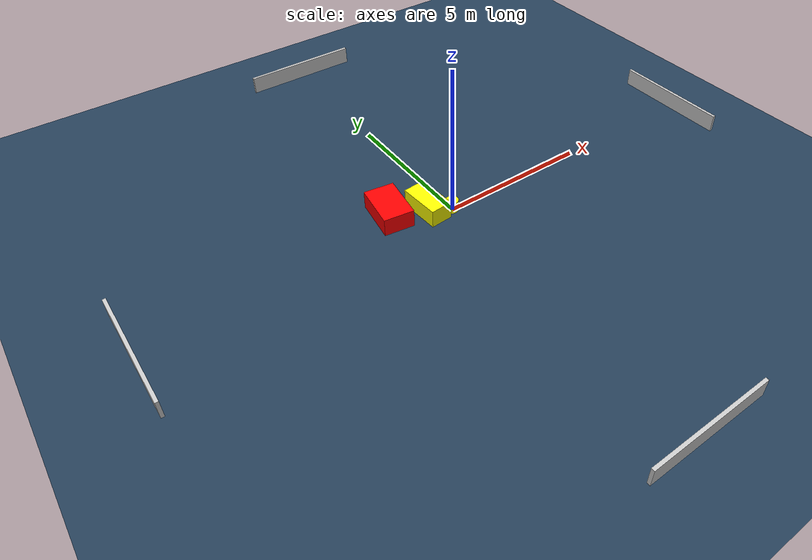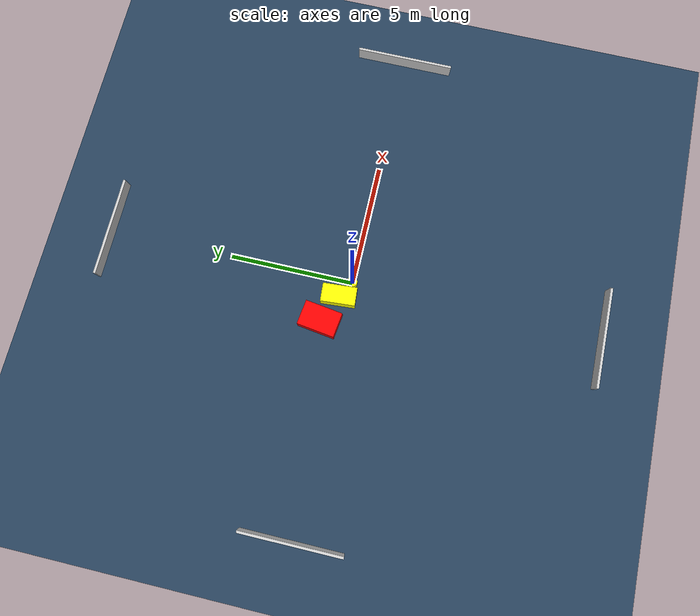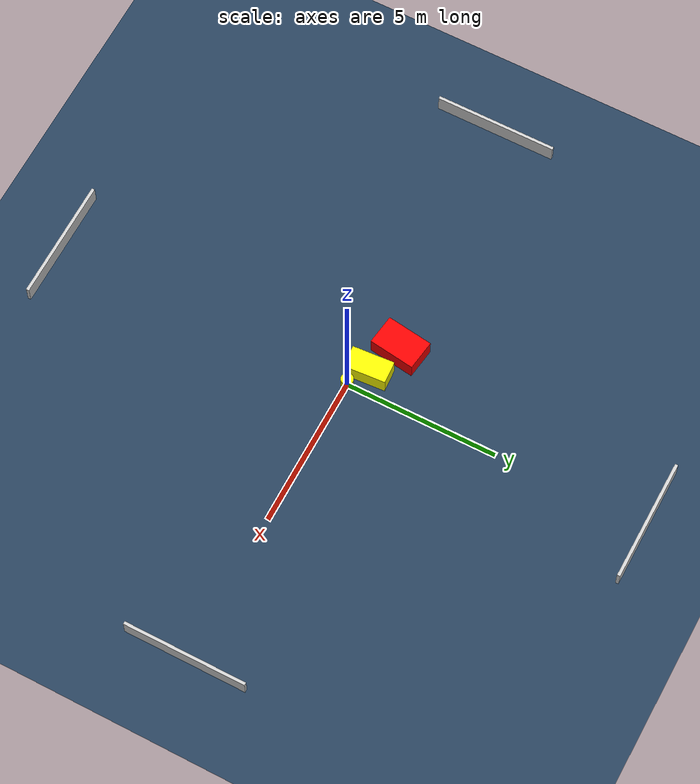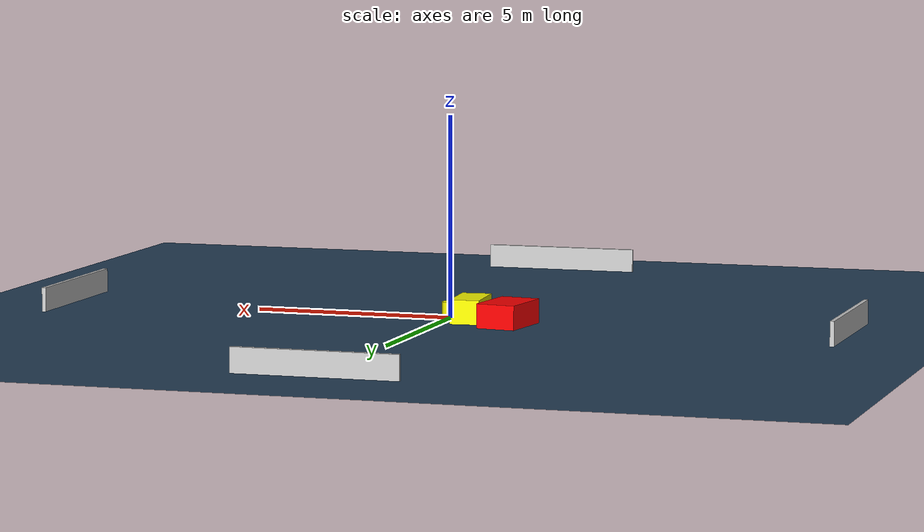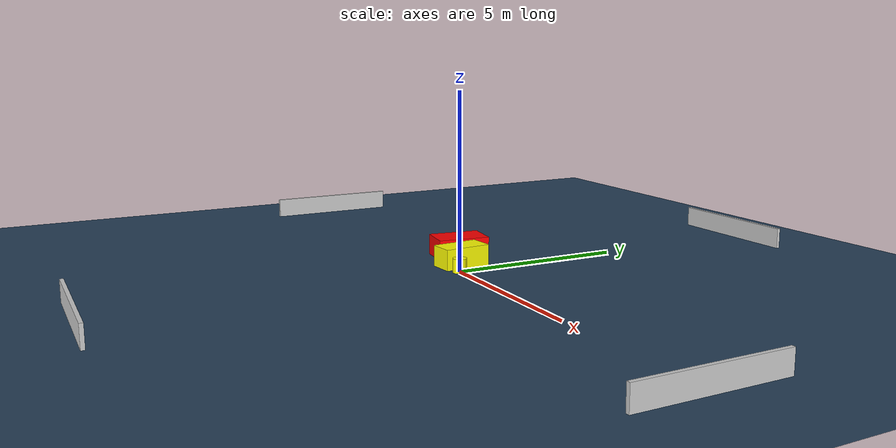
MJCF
<?xml version="1.0" ?>
<mujoco model="generated_environment">
  <option timestep="0.01" integrator="RK4" cone="elliptic"/>
  <default>
    <geom density="1"/>
  </default>
  <asset>
    <texture builtin="gradient" height="3072" name="skybox" rgb1="0.3 0.5 0.7" rgb2="0 0 0" type="skybox" width="512"/>
    <texture builtin="checker" height="300" name="groundplane" rgb1="0.2 0.3 0.4" rgb2="0.1 0.2 0.3" type="2d" width="300"/>
    <material name="groundplane" reflectance="0.2" texrepeat="5 5" texture="groundplane"/>
  </asset>
  <worldbody>
    <light dir="0 0 -1" directional="true" pos="0 0 1.5"/>
    <geom condim="3" friction="0.5 0.005 0.001" material="groundplane" name="floor" pos="0 0 0" size="0 0 0.05" type="plane"/>
    <body name="walls">
      <geom name="wall_1" condim="4" pos="-10.0 0.0 0.3" rgba="0.800000011920929 0.800000011920929 0.800000011920929 1.0" size="0.05 2.0 0.3" type="box"/>
      <geom name="wall_2" condim="4" pos="10.0 0.0 0.3" rgba="0.800000011920929 0.800000011920929 0.800000011920929 1.0" size="0.05 2.0 0.3" type="box"/>
      <geom name="wall_3" condim="4" pos="0.0 -10.0 0.3" rgba="0.800000011920929 0.800000011920929 0.800000011920929 1.0" size="2.0 0.05 0.3" type="box"/>
      <geom name="wall_4" condim="4" pos="0.0 10.0 0.3" rgba="0.800000011920929 0.800000011920929 0.800000011920929 1.0" size="2.0 0.05 0.3" type="box"/>
    </body>
    <body name="robot">
      <joint name="joint_x" type="slide" pos="0 0 0" axis="1 0 0"/>
      <joint name="joint_y" type="slide" pos="0 0 0" axis="0 1 0"/>
      <geom name="robot" type="cylinder" pos="0.0 0.0 0.2" size="0.2 0.2 0.0" mass="5.0" friction="1.0 0.005 0.0001" condim="4" rgba="1.0 1.0 0.0 1.0"/>
    </body>
    <body name="obstacle_1_movable">
      <geom name="obstacle_1_movable" condim="4" pos="-0.6520934575681502 0.39571728028340336 0.3" euler="0 0 4.166367264781021" friction="0.0 0.005 0.001" rgba="1.0 1.0 0.0 1.0" size="0.36673693644363387 0.6851130996742685 0.3" type="box" mass="0.1"/>
      <joint type="free"/>
    </body>
    <body name="obstacle_2_static">
      <geom name="obstacle_2_static" condim="4" pos="-1.7558859326615468 0.9013802842515874 0.3" euler="0 0 82.14616125374522" friction="0.0 0.005 0.001" rgba="1.0 0.0 0.0 1.0" size="0.7568126781445204 0.49587741443237593 0.3" type="box"/>
    </body>
  </worldbody>
  <actuator>
    <motor name="actuator_x" joint="joint_x" gear="1" ctrlrange="-1 1"/>
    <motor name="actuator_y" joint="joint_y" gear="1" ctrlrange="-1 1"/>
  </actuator>
</mujoco>
